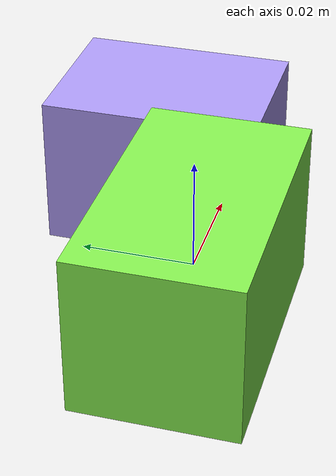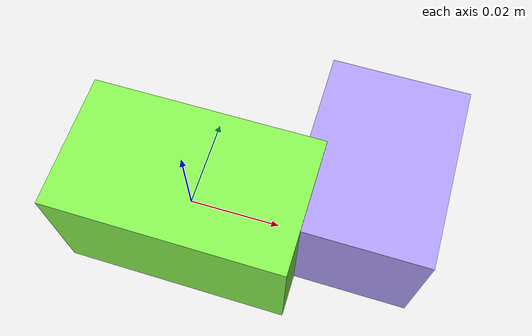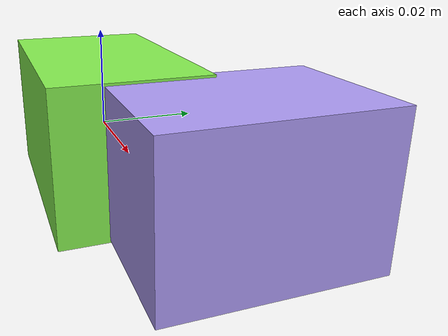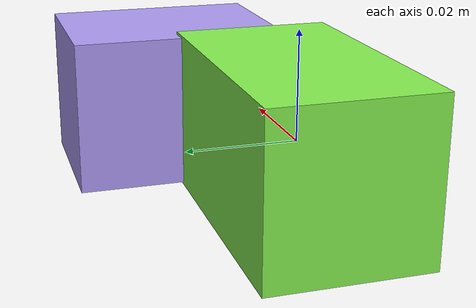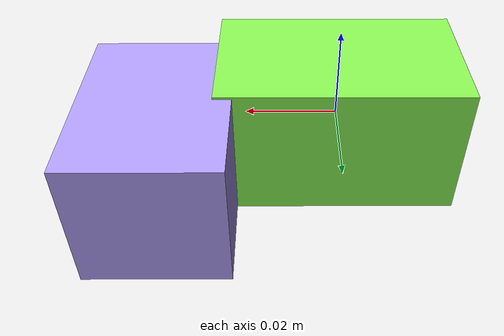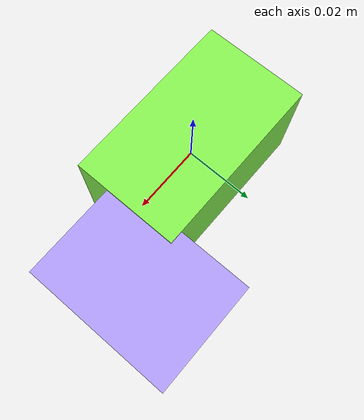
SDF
<sdf version="1.4"><world name="default"><model name="object0"><link name="link1"><pose>0 0 0 0 0 0</pose><inertial><pose>0 0 0 0 0 0</pose><mass>0.02769955026340961</mass><inertia><ixx>4.154932539511441e-06</ixx><ixy>0</ixy><iyy>8.151111040458353e-06</iyy><ixz>0</ixz><iyz>0</iyz><izz>8.151111040458353e-06</izz></inertia></inertial><visual name="link1_visual"><pose>0 0  0 0 0 0</pose><geometry><box><size>0.05129546345075855 0.03 0.03</size></box></geometry><material><diffuse>0.5260458499878663 0.9388774684690624 0.3132574411414923 1</diffuse></material></visual><collision><pose>0 0  0 0 0 0</pose><geometry><box><size>0.05129546345075855 0.03 0.03</size></box></geometry></collision></link><link name="link2"><pose>0.03687617366843754 0.014889318163613963 0 0 0 0</pose><inertial><pose>0 0 0 0 0 0</pose><mass>0.021889251561576433</mass><inertia><ixx>4.531328633289323e-06</ixx><ixy>0</ixy><iyy>3.1757655807253806e-06</iyy><ixz>0</ixz><iyz>0</iyz><izz>4.638950786800408e-06</izz></inertia></inertial><visual name="link2_visual"><pose>0 0  0 0 0 0</pose><geometry><box><size>0.03 0.04053565103995636 0.028999999999999998</size></box></geometry><material><diffuse>0.680552100337959 0.6071875414669143 0.9614243415184329 1</diffuse></material></visual><collision><pose>0 0  0 0 0 0</pose><geometry><box><size>0.03 0.04053565103995636 0.028999999999999998</size></box></geometry></collision></link><joint name="link_joint_0" type="fixed"><parent>link1</parent><child>link2</child><pose>0 0 0 0 0 0</pose><axis><xyz>0 0 1</xyz></axis></joint></model></world></sdf>
